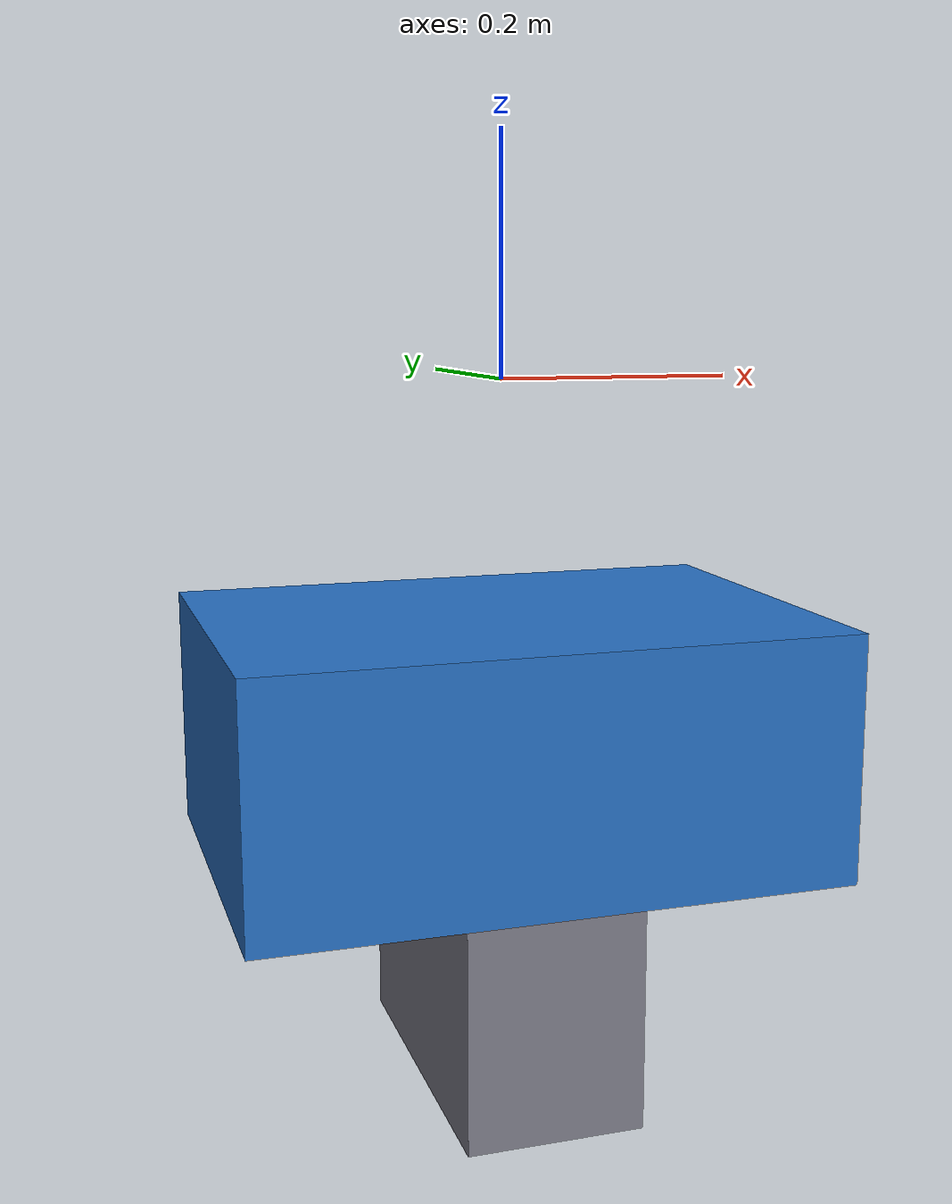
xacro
<?xml version="1.0"?>
<robot name="skyvolt_robot" xmlns:xacro="http://www.ros.org/wiki/xacro">

  <xacro:arg name="robot_id" default="r0"/>
  <xacro:property name="robot_id" value="$(arg robot_id)"/>

  <xacro:property name="chassis_l" value="0.500"/>
  <xacro:property name="chassis_w" value="0.350"/>
  <xacro:property name="chassis_h" value="0.210"/>
  <xacro:property name="chassis_mass" value="18.25"/>
  <xacro:property name="wheel_r" value="0.030"/>
  <xacro:property name="wheel_w" value="0.020"/>

  <xacro:macro name="box_inertia" params="m x y z">
    <inertia ixx="${m*(y*y+z*z)/12}" ixy="0" ixz="0"
             iyy="${m*(x*x+z*z)/12}" iyz="0"
             izz="${m*(x*x+y*y)/12}"/>
  </xacro:macro>

  <link name="${robot_id}/base_footprint"/>

  <link name="${robot_id}/chassis">
    <visual>
      <origin xyz="0 0 0"/>
      <geometry><box size="${chassis_l} ${chassis_w} ${chassis_h}"/></geometry>
      <material name="skyvolt_blue"><color rgba="0.16 0.45 0.78 1.0"/></material>
    </visual>
    <collision>
      <geometry><box size="${chassis_l} ${chassis_w} ${chassis_h}"/></geometry>
    </collision>
    <inertial>
      <mass value="${chassis_mass}"/>
      <xacro:box_inertia m="${chassis_mass}" x="${chassis_l}" y="${chassis_w}" z="${chassis_h}"/>
    </inertial>
  </link>

  <joint name="${robot_id}/track_slide" type="prismatic">
    <parent link="${robot_id}/base_footprint"/>
    <child link="${robot_id}/chassis"/>
    <axis xyz="1 0 0"/>
    <limit lower="-1e6" upper="1e6" effort="100" velocity="2.0"/>
    <origin xyz="0 0 -0.30" rpy="0 0 0"/>
  </joint>

  <!-- Manipulator: Y-axis telescopic + X-axis latch (paper 4.2.3) -->
  <link name="${robot_id}/telescope">
    <visual>
      <origin xyz="0 0 -0.10"/>
      <geometry><box size="0.15 0.30 0.20"/></geometry>
      <material name="metal_grey"><color rgba="0.5 0.5 0.55 1.0"/></material>
    </visual>
    <inertial>
      <mass value="1.5"/>
      <xacro:box_inertia m="1.5" x="0.15" y="0.30" z="0.20"/>
    </inertial>
  </link>

  <joint name="${robot_id}/telescope_y" type="prismatic">
    <parent link="${robot_id}/chassis"/>
    <child  link="${robot_id}/telescope"/>
    <axis xyz="0 1 0"/>
    <!-- 320 mm stroke, paper section 5 -->
    <limit lower="0.0" upper="0.32" effort="50" velocity="0.1"/>
    <origin xyz="0 0 -0.105" rpy="0 0 0"/>
  </joint>

  <link name="${robot_id}/latch">
    <visual>
      <geometry><cylinder radius="0.008" length="0.05"/></geometry>
      <origin rpy="0 1.5708 0"/>
      <material name="latch_orange"><color rgba="0.9 0.5 0.1 1.0"/></material>
    </visual>
    <inertial>
      <mass value="0.05"/>
      <inertia ixx="1e-5" ixy="0" ixz="0" iyy="1e-5" iyz="0" izz="1e-5"/>
    </inertial>
  </link>

  <joint name="${robot_id}/latch_x" type="prismatic">
    <parent link="${robot_id}/telescope"/>
    <child  link="${robot_id}/latch"/>
    <axis xyz="1 0 0"/>
    <limit lower="0.0" upper="0.04" effort="20" velocity="0.05"/>
    <origin xyz="0.06 0 -0.10"/>
  </joint>

  <!-- Sensor frames (no geometry; published by sim plugins) -->
  <link name="${robot_id}/rfid_reader"/>
  <joint name="${robot_id}/rfid_mount" type="fixed">
    <parent link="${robot_id}/chassis"/>
    <child  link="${robot_id}/rfid_reader"/>
    <origin xyz="0 0 0.10"/>
  </joint>

  <link name="${robot_id}/photoeye"/>
  <joint name="${robot_id}/photoeye_mount" type="fixed">
    <parent link="${robot_id}/chassis"/>
    <child  link="${robot_id}/photoeye"/>
    <origin xyz="0.05 0 0.10"/>
  </joint>

</robot>
